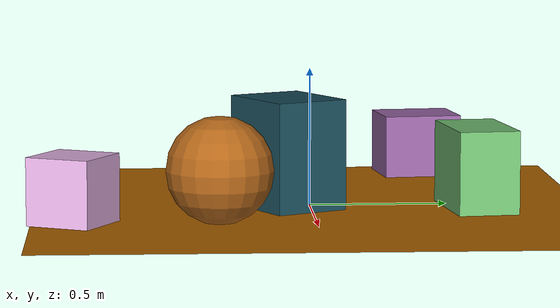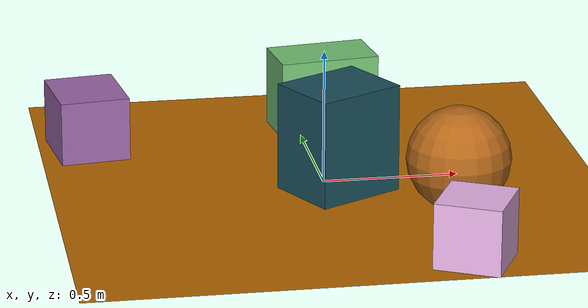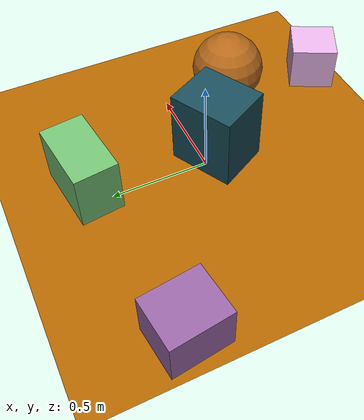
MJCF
<mujoco>
   <asset>
<texture type="skybox" builtin="gradient" rgb1="0.0 0.6 0.6" rgb2="1.0 1.0 0.6" width="256" height="256"/>
<texture name="flat_0" builtin="flat" rgb1="0.7 0.4 0.1" rgb2="0.7 0.4 0.1"  width="200" height="200"/>
<texture name="gradient_1" builtin="gradient" rgb1="0.9 0.8 0.5" rgb2="0.3 0.0 0.8" width="200" height="200"/>
<texture name="gradient_2" builtin="gradient" rgb1="1.0 0.5 1.0" rgb2="0.8 0.9 0.8" width="200" height="200"/>
<texture name="checker_3" builtin="checker" rgb1="0.2 0.5 0.2" rgb2="0.7 1.0 0.7" width="200" height="200"/>
<texture name="checker_4" builtin="checker" rgb1="0.0 0.1 0.2" rgb2="0.2 0.5 0.5" width="200" height="200"/><material name="flat_0_mat" reflectance="0" texture="flat_0" texuniform="true"/>
<material name="gradient_1_mat" reflectance="0" texture="gradient_1" texuniform="true"/>
<material name="gradient_2_mat" reflectance="0" texture="gradient_2" texuniform="true"/>
<material name="checker_3_mat" reflectance="0" texrepeat="8 8" texture="checker_3" texuniform="false" />
<material name="checker_4_mat" reflectance="0" texrepeat="9 9" texture="checker_4" texuniform="false" />
   </asset>

   <worldbody>
      <light diffuse=".9 .9 .9" pos="0 0 3" dir="0 0 -1"/>
     <geom type="plane" size="1 1 0.1" rgba="0.7 0.4 0.0 1"/>
<geom type="sphere" pos="0.43 -0.34 0.19" size="0.19 0.19 0.19" material="flat_0_mat" euler="0 0 80" />
<geom type="box" pos="-0.82 0.48 0.12" size="0.13 0.15 0.12" material="gradient_1_mat" euler="0 0 7" />
<geom type="box" pos="0.38 -0.85 0.12" size="0.12 0.12 0.12" material="gradient_2_mat" euler="0 0 63" />
<geom type="box" pos="0.1 0.6 0.15" size="0.19 0.11 0.15" material="checker_3_mat" euler="0 0 7" />
<geom type="box" pos="0.04 -0.08 0.2" size="0.17 0.14 0.2" material="checker_4_mat" euler="0 0 28" /><camera euler="60 0 180" fovy="60" name="camera1" pos="-0.2 -1.5 1"></camera>   </worldbody>
</mujoco>
